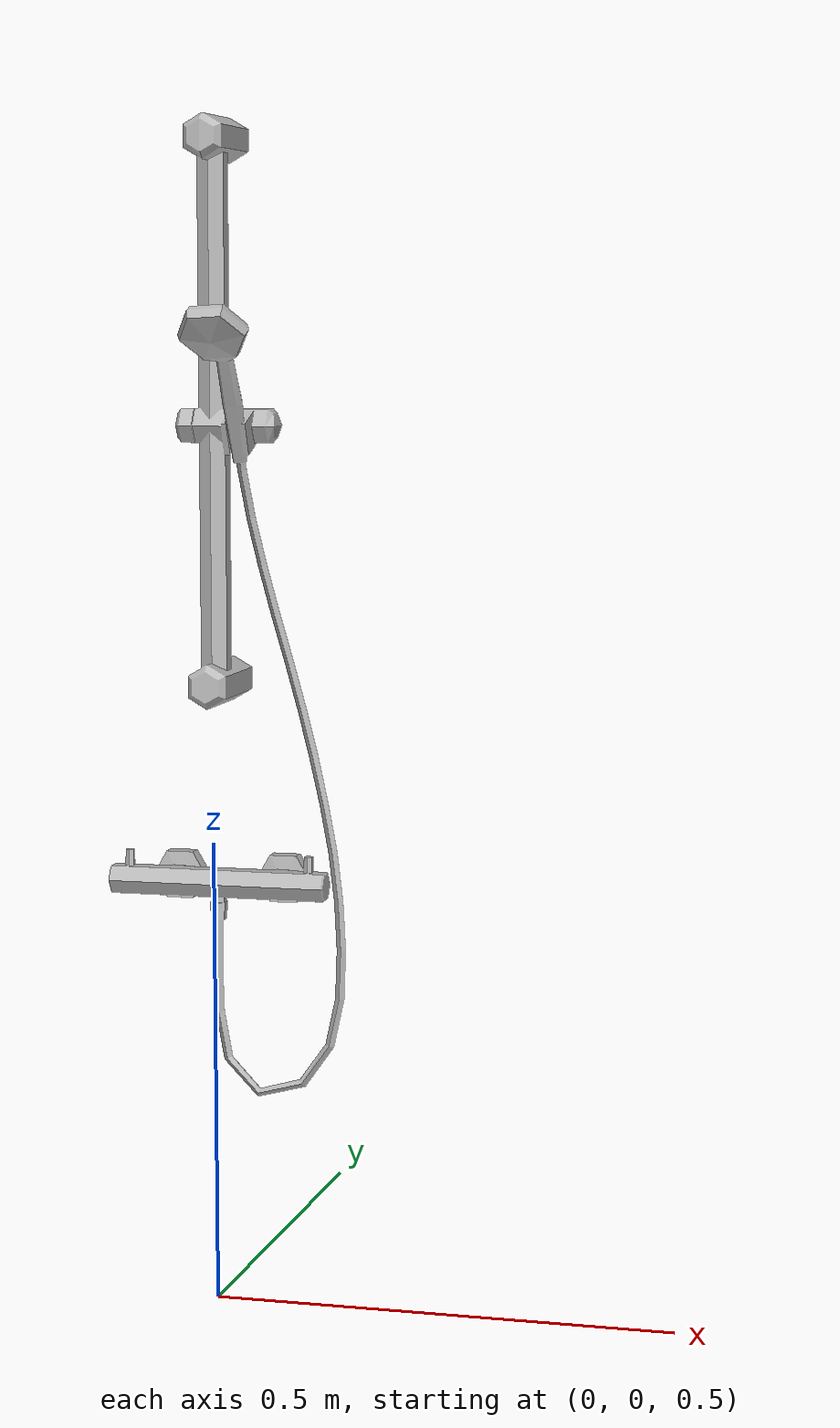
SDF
<?xml version="1.0"?>

<sdf version="1.6">
  <model name='Shower'>
<static>true</static>
    <link name="body">
      <pose>0 0 0 0 0 0</pose>

      <visual name="visual">
        <geometry>
          <mesh>
            <uri>model://Shower/meshes/Shower.obj</uri>
            <scale>1 1 1</scale>
          </mesh>
        </geometry>
      </visual>

      <collision name="collision">
        <geometry>
          <mesh>
            <uri>model://Shower/meshes/Shower.obj</uri>
            <scale>1 1 1</scale>
          </mesh>
        </geometry>
      </collision>

    </link>
  </model>
</sdf>
